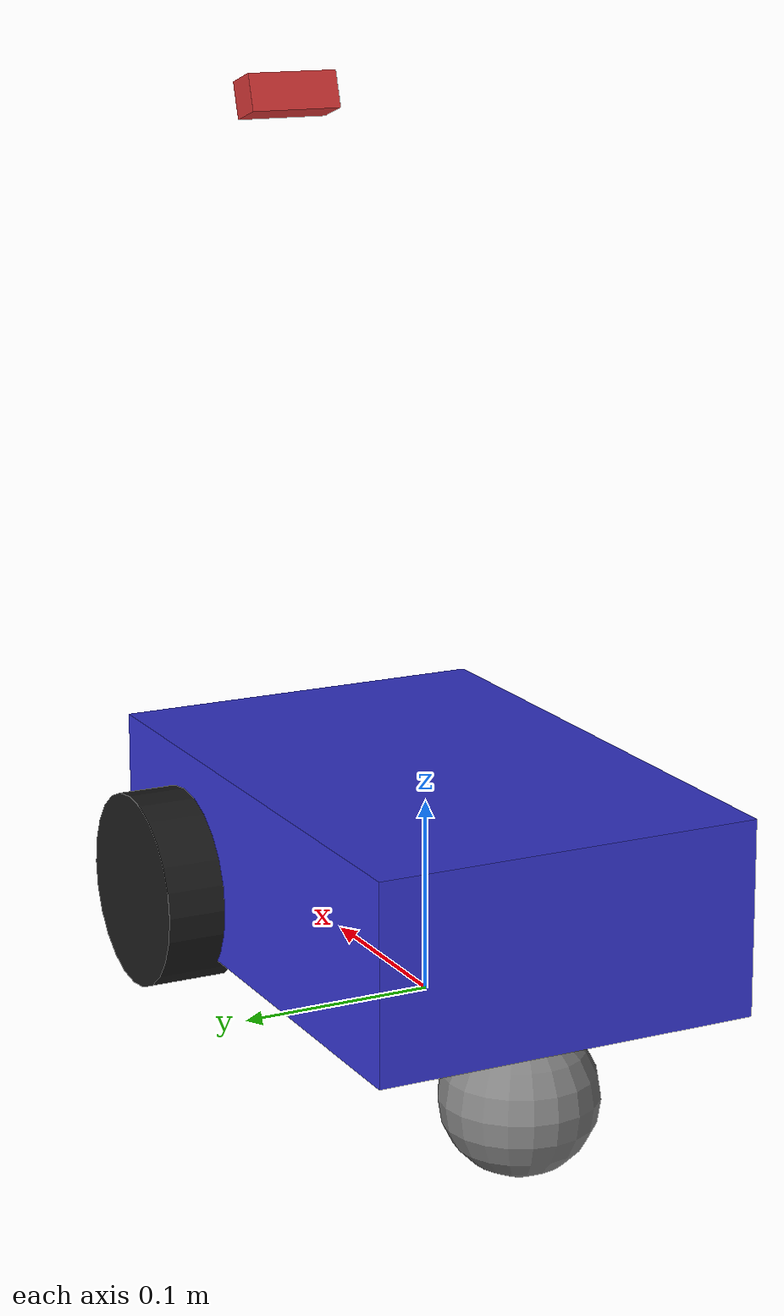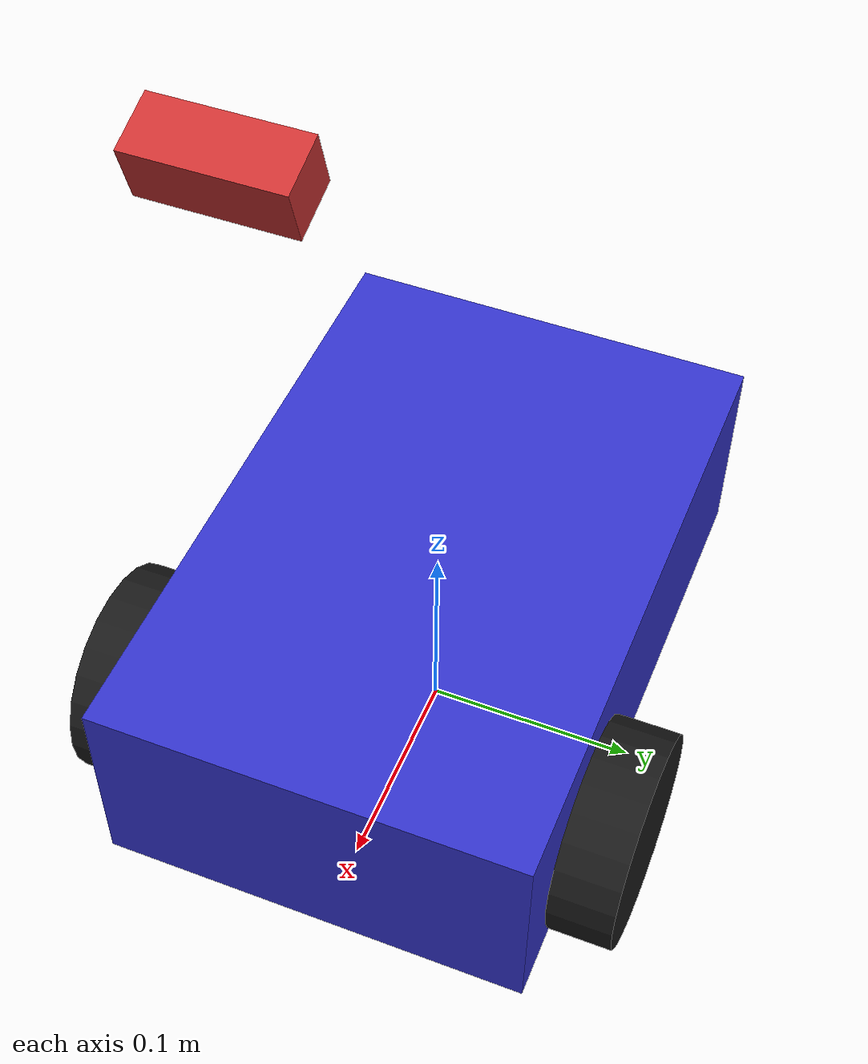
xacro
<?xml version="1.0"?>
<robot name="lane_follower" xmlns:xacro="http://www.ros.org/wiki/xacro">

  <!-- Constants -->
  <xacro:property name="chassis_length" value="0.3"/>
  <xacro:property name="chassis_width" value="0.2"/>
  <xacro:property name="chassis_height" value="0.1"/>
  <xacro:property name="wheel_radius" value="0.05"/>
  <xacro:property name="wheel_width" value="0.04"/>
  <xacro:property name="wheel_separation" value="0.22"/>
  <xacro:property name="camera_height" value="0.44"/>

  <!-- Base link -->
  <link name="base_link"/>

  <!-- Chassis -->
  <link name="chassis">
    <visual>
      <geometry>
        <box size="${chassis_length} ${chassis_width} ${chassis_height}"/>
      </geometry>
      <material name="blue">
        <color rgba="0.2 0.2 0.8 1.0"/>
      </material>
    </visual>
    <collision>
      <geometry>
        <box size="${chassis_length} ${chassis_width} ${chassis_height}"/>
      </geometry>
    </collision>
    <inertial>
      <mass value="5.0"/>
      <inertia ixx="0.0395" ixy="0.0" ixz="0.0" iyy="0.106" iyz="0.0" izz="0.106"/>
    </inertial>
  </link>

  <joint name="base_to_chassis" type="fixed">
    <parent link="base_link"/>
    <child link="chassis"/>
    <origin xyz="0 0 ${wheel_radius + 0.02}" rpy="0 0 0"/>
  </joint>

  <!-- Wheels -->
  <xacro:macro name="wheel" params="prefix reflect">
    <link name="${prefix}_wheel">
      <visual>
        <geometry>
          <cylinder radius="${wheel_radius}" length="${wheel_width}"/>
        </geometry>
        <material name="black">
          <color rgba="0.1 0.1 0.1 1.0"/>
        </material>
        <origin xyz="0 0 0" rpy="1.5707963 0 0"/>
      </visual>
      <collision>
        <geometry>
          <cylinder radius="${wheel_radius}" length="${wheel_width}"/>
        </geometry>
        <origin xyz="0 0 0" rpy="1.5707963 0 0"/>
      </collision>
      <inertial>
        <mass value="0.5"/>
        <inertia ixx="0.000625" ixy="0.0" ixz="0.0" iyy="0.000625" iyz="0.0" izz="0.00125"/>
      </inertial>
    </link>

    <joint name="${prefix}_wheel_joint" type="continuous">
      <parent link="chassis"/>
      <child link="${prefix}_wheel"/>
      <origin xyz="${chassis_length/4} ${reflect*wheel_separation/2} ${-0.02}" rpy="0 0 0"/>
      <axis xyz="0 1 0"/>
    </joint>
  </xacro:macro>

  <xacro:wheel prefix="left" reflect="1"/>
  <xacro:wheel prefix="right" reflect="-1"/>

  <!-- Caster wheel -->
  <link name="caster_wheel">
    <visual>
      <geometry>
        <sphere radius="${wheel_radius*0.8}"/>
      </geometry>
      <material name="grey">
        <color rgba="0.5 0.5 0.5 1.0"/>
      </material>
    </visual>
    <collision>
      <geometry>
        <sphere radius="${wheel_radius*0.8}"/>
      </geometry>
    </collision>
    <inertial>
      <mass value="0.2"/>
      <inertia ixx="0.00016" ixy="0.0" ixz="0.0" iyy="0.00016" iyz="0.0" izz="0.00016"/>
    </inertial>
  </link>

  <joint name="caster_wheel_joint" type="fixed">
    <parent link="chassis"/>
    <child link="caster_wheel"/>
    <origin xyz="${-chassis_length/3} 0 ${-chassis_height/2-wheel_radius*0.8}" rpy="0 0 0"/>
  </joint>

  <!-- Camera -->
  <link name="camera_link">
    <visual>
      <geometry>
        <box size="0.02 0.05 0.02"/>
      </geometry>
      <material name="red">
        <color rgba="0.8 0.2 0.2 1.0"/>
      </material>
    </visual>
    <collision>
      <geometry>
        <box size="0.02 0.05 0.02"/>
      </geometry>
    </collision>
    <inertial>
      <mass value="0.1"/>
      <inertia ixx="0.00002" ixy="0.0" ixz="0.0" iyy="0.00001" iyz="0.0" izz="0.00002"/>
    </inertial>
  </link>

  <joint name="camera_joint" type="fixed">
    <parent link="chassis"/>
    <child link="camera_link"/>
    <origin xyz="${chassis_length/2 + 0.01} 0 ${camera_height - wheel_radius - 0.02}" rpy="0 0.3 0"/>
  </joint>

  <!-- Camera optical frame -->
  <link name="camera_optical_frame"/>

  <joint name="camera_optical_joint" type="fixed">
    <parent link="camera_link"/>
    <child link="camera_optical_frame"/>
    <origin xyz="0 0 0" rpy="${-pi/2} 0 ${-pi/2}"/>
  </joint>

  <!-- Gazebo plugins -->
  <gazebo>
    <plugin name="differential_drive_controller" filename="libgazebo_ros_diff_drive.so">
      <update_rate>50</update_rate>
      <left_joint>left_wheel_joint</left_joint>
      <right_joint>right_wheel_joint</right_joint>
      <wheel_separation>${wheel_separation}</wheel_separation>
      <wheel_diameter>${2*wheel_radius}</wheel_diameter>
      <max_wheel_torque>20</max_wheel_torque>
      <max_wheel_acceleration>1.0</max_wheel_acceleration>
      <command_topic>cmd_vel</command_topic>
      <publish_odom>true</publish_odom>
      <publish_odom_tf>true</publish_odom_tf>
      <publish_wheel_tf>false</publish_wheel_tf>
      <odometry_topic>odom</odometry_topic>
      <odometry_frame>odom</odometry_frame>
      <robot_base_frame>base_link</robot_base_frame>
    </plugin>
  </gazebo>

  <!-- Camera plugin -->
  <gazebo reference="camera_link">
    <sensor type="camera" name="front_camera">
      <update_rate>30.0</update_rate>
      <camera name="head">
        <horizontal_fov>1.3962634</horizontal_fov>
        <image>
          <width>848</width>
          <height>480</height>
          <format>R8G8B8</format>
        </image>
        <clip>
          <near>0.02</near>
          <far>300</far>
        </clip>
        <noise>
          <type>gaussian</type>
          <mean>0.0</mean>
          <stddev>0.007</stddev>
        </noise>
      </camera>
      <plugin name="camera_controller" filename="libgazebo_ros_camera.so">
        <alwaysOn>true</alwaysOn>
        <updateRate>30.0</updateRate>
        <cameraName>front_camera</cameraName>
        <imageTopicName>/front_camera/image_raw</imageTopicName>
        <cameraInfoTopicName>/front_camera/camera_info</cameraInfoTopicName>
        <frameName>camera_optical_frame</frameName>
      </plugin>
    </sensor>
  </gazebo>

  <!-- Material colors for Gazebo -->
  <gazebo reference="chassis">
    <material>Gazebo/Blue</material>
  </gazebo>

  <gazebo reference="left_wheel">
    <material>Gazebo/Black</material>
  </gazebo>

  <gazebo reference="right_wheel">
    <material>Gazebo/Black</material>
  </gazebo>

  <gazebo reference="caster_wheel">
    <material>Gazebo/Grey</material>
    <mu1>0.0</mu1>
    <mu2>0.0</mu2>
  </gazebo>

  <gazebo reference="camera_link">
    <material>Gazebo/Red</material>
  </gazebo>

</robot>
